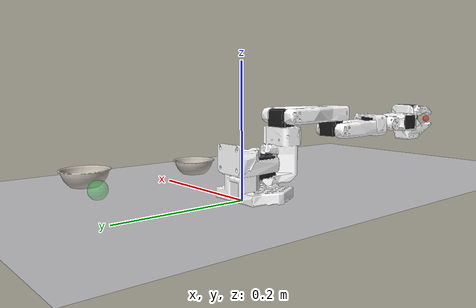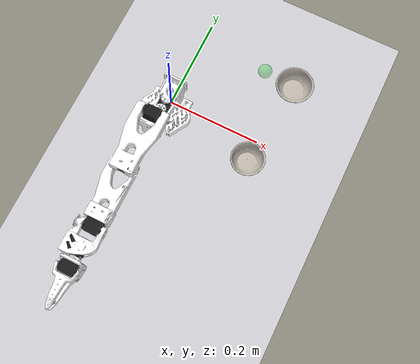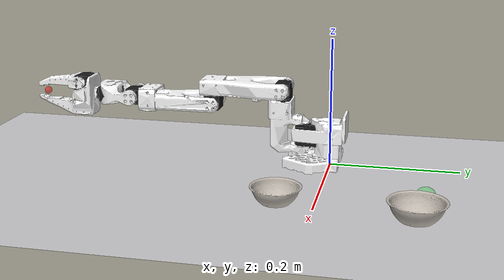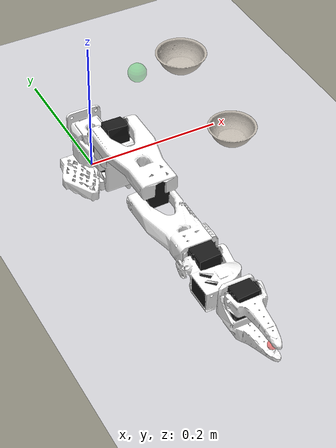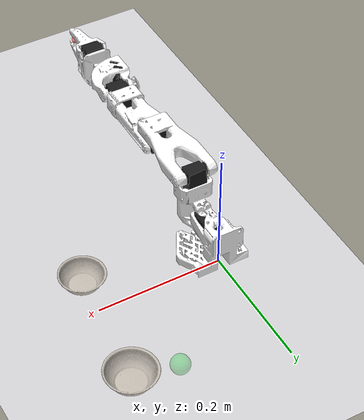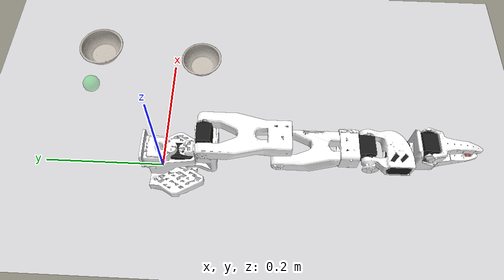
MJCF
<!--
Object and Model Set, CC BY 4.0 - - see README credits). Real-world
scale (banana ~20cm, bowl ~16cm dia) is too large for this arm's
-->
<mujoco model="so_arm100_pickplace">

  <include file="so_arm100.xml"/>

  <statistic center="0.15 0 0.1" extent="0.5"/>

  <visual>
    <headlight diffuse="0.7 0.7 0.7" ambient="0.4 0.4 0.4" specular="0.1 0.1 0.1"/>
    <global azimuth="150" elevation="-25" offwidth="640" offheight="480"/>
  </visual>

  <asset>
    <texture type="skybox" builtin="gradient" rgb1="0.4 0.6 0.8" rgb2="0.9 0.9 0.95" width="256" height="256"/>
    <texture name="grid" type="2d" builtin="checker" rgb1="0.85 0.85 0.85" rgb2="0.75 0.75 0.78"
             width="300" height="300"/>
    <material name="grid" texture="grid" texrepeat="10 10" reflectance="0.05"/>

    <texture name="banana_tex" type="2d" file="assets/ycb/banana/texture_map.png"/>
    <material name="banana_mat" texture="banana_tex"/>
    <mesh name="banana_visual" file="ycb/banana/textured.obj" scale="0.45 0.45 0.45"/>
    <mesh name="banana_coacd_0" file="ycb/banana/textured_coacd_0.stl" scale="0.45 0.45 0.45"/>
    <mesh name="banana_coacd_1" file="ycb/banana/textured_coacd_1.stl" scale="0.45 0.45 0.45"/>
    <mesh name="banana_coacd_2" file="ycb/banana/textured_coacd_2.stl" scale="0.45 0.45 0.45"/>
    <mesh name="banana_coacd_3" file="ycb/banana/textured_coacd_3.stl" scale="0.45 0.45 0.45"/>

    <texture name="bowl_tex" type="2d" file="assets/ycb/bowl/texture_map.png"/>
    <material name="bowl_mat" texture="bowl_tex"/>
    <mesh name="bowl_visual" file="ycb/bowl/textured.obj" scale="0.5 0.5 0.5"/>
    <mesh name="bowl_coacd_0" file="ycb/bowl/textured_coacd_0.stl" scale="0.5 0.5 0.5"/>
    <mesh name="bowl_coacd_1" file="ycb/bowl/textured_coacd_1.stl" scale="0.5 0.5 0.5"/>
    <mesh name="bowl_coacd_2" file="ycb/bowl/textured_coacd_2.stl" scale="0.5 0.5 0.5"/>
    <mesh name="bowl_coacd_3" file="ycb/bowl/textured_coacd_3.stl" scale="0.5 0.5 0.5"/>
    <mesh name="bowl_coacd_4" file="ycb/bowl/textured_coacd_4.stl" scale="0.5 0.5 0.5"/>
  </asset>

  <worldbody>
    <light pos="0.3 0 1.2" dir="0 0 -1" directional="false"/>
    <geom name="floor" type="plane" size="1.5 1.5 0.05" material="grid"/>

    <camera name="vla_cam" pos="0.55 0.0 0.45" xyaxes="0 1 0 -0.6 0 0.8" fovy="55"/>
    <!-- Overhead debug camera -->
    <camera name="top_cam" pos="0.15 0 0.8" xyaxes="0 -1 0 1 0 0" fovy="50"/>

    <!-- Pickable object. rest-z (0.0078) = -min_z of the scaled mesh, so it
         spawns sitting on the floor rather than clipping through it. -->
    <body name="banana" pos="0.20 -0.05 0.02">
      <freejoint name="banana_free"/>
      <geom type="mesh" mesh="banana_visual" material="banana_mat"
            contype="0" conaffinity="0" density="0" group="2"/>
      <geom type="mesh" mesh="banana_coacd_0" group="3" mass="0.02"
            friction="1.2 0.05 0.001" condim="4"/>
      <geom type="mesh" mesh="banana_coacd_1" group="3" mass="0"
            friction="1.2 0.05 0.001" condim="4"/>
      <geom type="mesh" mesh="banana_coacd_2" group="3" mass="0"
            friction="1.2 0.05 0.001" condim="4"/>
      <geom type="mesh" mesh="banana_coacd_3" group="3" mass="0"
            friction="1.2 0.05 0.001" condim="4"/>
    </body>

    <!-- Container. Heavier + higher friction so it isn't easily knocked
         around while the arm is placing the banana. -->
    <body name="bowl" pos="0.22 0.14 0.02">
      <freejoint name="bowl_free"/>
      <geom type="mesh" mesh="bowl_visual" material="bowl_mat"
            contype="0" conaffinity="0" density="0" group="2"/>
      <geom type="mesh" mesh="bowl_coacd_0" group="3" mass="0.08"
            friction="1.0 0.05 0.001" condim="4"/>
      <geom type="mesh" mesh="bowl_coacd_1" group="3" mass="0"
            friction="1.0 0.05 0.001" condim="4"/>
      <geom type="mesh" mesh="bowl_coacd_2" group="3" mass="0"
            friction="1.0 0.05 0.001" condim="4"/>
      <geom type="mesh" mesh="bowl_coacd_3" group="3" mass="0"
            friction="1.0 0.05 0.001" condim="4"/>
      <geom type="mesh" mesh="bowl_coacd_4" group="3" mass="0"
            friction="1.0 0.05 0.001" condim="4"/>
    </body>

    <!-- Debug marker for commanded targets (not used for success logic). -->
    <site name="goal" pos="0.15 0.15 0.0125" size="0.015" rgba="0.1 0.8 0.2 0.35" type="sphere"/>
  </worldbody>
</mujoco>

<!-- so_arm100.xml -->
<mujoco model="so_arm100">
  <compiler angle="radian" meshdir="assets/"/>

  <option cone="elliptic" impratio="10"/>

  <asset>
    <material name="white" rgba="1 1 1 1"/>
    <material name="black" rgba="0.1 0.1 0.1 1"/>

    <mesh name="Base" file="Base.stl"/>
    <mesh name="Base_Motor" file="Base_Motor.stl"/>
    <mesh name="Rotation_Pitch" file="Rotation_Pitch.stl"/>
    <mesh name="Rotation_Pitch_Motor" file="Rotation_Pitch_Motor.stl"/>
    <mesh name="Upper_Arm" file="Upper_Arm.stl"/>
    <mesh name="Upper_Arm_Motor" file="Upper_Arm_Motor.stl"/>
    <mesh name="Lower_Arm" file="Lower_Arm.stl"/>
    <mesh name="Lower_Arm_Motor" file="Lower_Arm_Motor.stl"/>
    <mesh name="Wrist_Pitch_Roll" file="Wrist_Pitch_Roll.stl"/>
    <mesh name="Wrist_Pitch_Roll_Motor" file="Wrist_Pitch_Roll_Motor.stl"/>
    <mesh name="Fixed_Jaw" file="Fixed_Jaw.stl"/>
    <mesh name="Fixed_Jaw_Motor" file="Fixed_Jaw_Motor.stl"/>
    <mesh name="Fixed_Jaw_Collision_1" file="Fixed_Jaw_Collision_1.stl"/>
    <mesh name="Fixed_Jaw_Collision_2" file="Fixed_Jaw_Collision_2.stl"/>
    <mesh name="Moving_Jaw" file="Moving_Jaw.stl"/>
    <mesh name="Moving_Jaw_Collision_1" file="Moving_Jaw_Collision_1.stl"/>
    <mesh name="Moving_Jaw_Collision_2" file="Moving_Jaw_Collision_2.stl"/>
    <mesh name="Moving_Jaw_Collision_3" file="Moving_Jaw_Collision_3.stl"/>
  </asset>

  <default>
    <default class="so_arm100">
      <joint frictionloss="0.1" armature="0.1"/>
      <position kp="50" dampratio="1" forcerange="-3.5 3.5"/>
      <default class="Rotation">
        <joint axis="0 1 0" range="-1.92 1.92"/>
      </default>
      <default class="Pitch">
        <joint axis="1 0 0" range="-3.32 0.174"/>
      </default>
      <default class="Elbow">
        <joint axis="1 0 0" range="-0.174 3.14"/>
      </default>
      <default class="Wrist_Pitch">
        <joint axis="1 0 0" range="-1.66 1.66"/>
      </default>
      <default class="Wrist_Roll">
        <joint axis="0 1 0" range="-2.79 2.79"/>
      </default>
      <default class="Jaw">
        <joint axis="0 0 1" range="-0.174 1.75"/>
      </default>
      <default class="visual">
        <geom type="mesh" contype="0" conaffinity="0" density="0" group="2" material="white"/>
        <default class="motor_visual">
          <geom material="black"/>
        </default>
      </default>
      <default class="collision">
        <geom group="3" type="mesh" material="white"/>
        <default class="finger_collision">
          <geom type="box" solimp="2 1 0.01" solref="0.01 1" friction="1 0.005 0.0001"/>
        </default>
      </default>
    </default>
  </default>

  <worldbody>
    <body name="Base" childclass="so_arm100">
      <geom type="mesh" mesh="Base" class="visual"/>
      <geom type="mesh" mesh="Base_Motor" class="motor_visual"/>
      <geom type="mesh" mesh="Base" class="collision"/>
      <body name="Rotation_Pitch" pos="0 -0.0452 0.0165" quat="0.707105 0.707108 0 0">
        <inertial pos="-9.07886e-05 0.0590972 0.031089" quat="0.363978 0.441169 -0.623108 0.533504" mass="0.119226"
          diaginertia="5.94278e-05 5.89975e-05 3.13712e-05"/>
        <joint name="Rotation" class="Rotation"/>
        <geom type="mesh" mesh="Rotation_Pitch" class="visual"/>
        <geom type="mesh" mesh="Rotation_Pitch_Motor" class="motor_visual"/>
        <geom type="mesh" mesh="Rotation_Pitch" class="collision"/>
        <body name="Upper_Arm" pos="0 0.1025 0.0306" euler="1.57079 0 0">
          <inertial pos="-1.72052e-05 0.0701802 0.00310545" quat="0.50104 0.498994 -0.493562 0.50632" mass="0.162409"
            diaginertia="0.000213312 0.000167164 7.01522e-05"/>
          <joint name="Pitch" class="Pitch"/>
          <geom type="mesh" mesh="Upper_Arm" class="visual"/>
          <geom type="mesh" mesh="Upper_Arm_Motor" class="motor_visual"/>
          <geom type="mesh" mesh="Upper_Arm" class="collision"/>
          <body name="Lower_Arm" pos="0 0.11257 0.028" euler="-1.57079 0 0">
            <inertial pos="-0.00339604 0.00137796 0.0768007" quat="0.701995 0.0787996 0.0645626 0.704859"
              mass="0.147968" diaginertia="0.000138803 0.000107748 4.84242e-05"/>
            <joint name="Elbow" class="Elbow"/>
            <geom type="mesh" mesh="Lower_Arm" class="visual"/>
            <geom type="mesh" mesh="Lower_Arm_Motor" class="motor_visual"/>
            <geom type="mesh" mesh="Lower_Arm" class="collision"/>
            <body name="Wrist_Pitch_Roll" pos="0 0.0052 0.1349" euler="-1.57079 0 0">
              <inertial pos="-0.00852653 -0.0352279 -2.34622e-05" quat="-0.0522806 0.705235 0.0549524 0.704905"
                mass="0.0661321" diaginertia="3.45403e-05 2.39041e-05 1.94704e-05"/>
              <joint name="Wrist_Pitch" class="Wrist_Pitch"/>
              <geom type="mesh" mesh="Wrist_Pitch_Roll" class="visual"/>
              <geom type="mesh" mesh="Wrist_Pitch_Roll_Motor" class="motor_visual"/>
              <geom type="mesh" mesh="Wrist_Pitch_Roll" class="collision"/>
              <body name="Fixed_Jaw" pos="0 -0.0601 0" euler="0 1.57079 0">
                <inertial pos="0.00552377 -0.0280167 0.000483583" quat="0.41836 0.620891 -0.350644 0.562599"
                  mass="0.0929859" diaginertia="5.03136e-05 4.64098e-05 2.72961e-05"/>
                <joint name="Wrist_Roll" class="Wrist_Roll"/>
                <geom type="mesh" mesh="Fixed_Jaw" class="visual"/>
                <geom type="mesh" mesh="Fixed_Jaw_Motor" class="motor_visual"/>
                <geom type="mesh" mesh="Fixed_Jaw_Collision_1" class="collision"/>
                <geom type="mesh" mesh="Fixed_Jaw_Collision_2" class="collision"/>
                <geom class="finger_collision" name="fixed_jaw_pad_1" size="0.001 0.005 0.004" pos="0.0089 -0.1014 0"/>
                <geom class="finger_collision" name="fixed_jaw_pad_2" size="0.001 0.005 0.006" pos="0.0109 -0.0914 0"/>
                <geom class="finger_collision" name="fixed_jaw_pad_3" size="0.001 0.01 0.007" pos="0.0126 -0.0768 0"/>
                <geom class="finger_collision" name="fixed_jaw_pad_4" size="0.001 0.01 0.008" pos="0.0143 -0.0572 0"/>
                <site name="gripper" pos="0.0 -0.09 0" size="0.006" rgba="1 0 0 0.5"/>
                <body name="Moving_Jaw" pos="-0.0202 -0.0244 0" quat="1.34924e-11 -3.67321e-06 1 -3.67321e-06">
                  <inertial pos="-0.00161745 -0.0303473 0.000449646" quat="0.696562 0.716737 -0.0239844 -0.0227026"
                    mass="0.0202444" diaginertia="1.11265e-05 8.99651e-06 2.99548e-06"/>
                  <joint name="Jaw" class="Jaw"/>
                  <geom type="mesh" mesh="Moving_Jaw" class="visual"/>
                  <geom type="mesh" mesh="Moving_Jaw_Collision_1" class="collision"/>
                  <geom type="mesh" mesh="Moving_Jaw_Collision_2" class="collision"/>
                  <geom type="mesh" mesh="Moving_Jaw_Collision_3" class="collision"/>
                  <geom class="finger_collision" name="moving_jaw_pad_1" size="0.001 0.005 0.004"
                    pos="-0.0113 -0.077 0"/>
                  <geom class="finger_collision" name="moving_jaw_pad_2" size="0.001 0.005 0.006"
                    pos="-0.0093 -0.067 0"/>
                  <geom class="finger_collision" name="moving_jaw_pad_3" size="0.001 0.01 0.006"
                    pos="-0.0073 -0.055 0"/>
                  <geom class="finger_collision" name="moving_jaw_pad_4" size="0.001 0.01 0.008"
                    pos="-0.0073 -0.035 0"/>
                </body>
              </body>
            </body>
          </body>
        </body>
      </body>
    </body>
  </worldbody>

  <actuator>
    <position class="Rotation" name="Rotation" joint="Rotation" inheritrange="1"/>
    <position class="Pitch" name="Pitch" joint="Pitch" inheritrange="1"/>
    <position class="Elbow" name="Elbow" joint="Elbow" inheritrange="1"/>
    <position class="Wrist_Pitch" name="Wrist_Pitch" joint="Wrist_Pitch" inheritrange="1"/>
    <position class="Wrist_Roll" name="Wrist_Roll" joint="Wrist_Roll" inheritrange="1"/>
    <position class="Jaw" name="Jaw" joint="Jaw" inheritrange="1"/>
  </actuator>

  <contact>
    <exclude body1="Base" body2="Rotation_Pitch"/>
  </contact>

  <keyframe>
    <key name="home" qpos="0 -1.57 1.57 1.57 -1.57 0" ctrl="0 -1.57 1.57 1.57 -1.57 0"/>
    <key name="rest" qpos="0 -3.32 3.11 1.18 0 -0.174" ctrl="0 -3.32 3.11 1.18 0 -0.174"/>
  </keyframe>
</mujoco>
